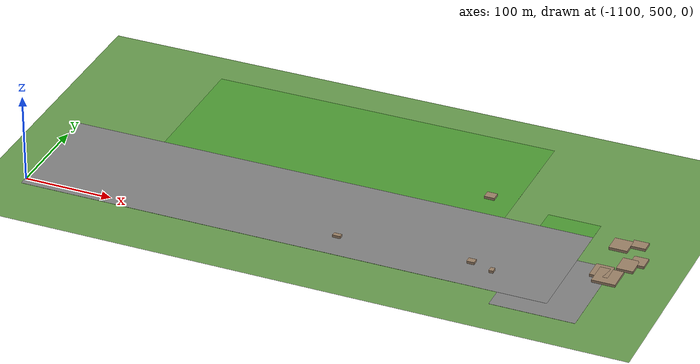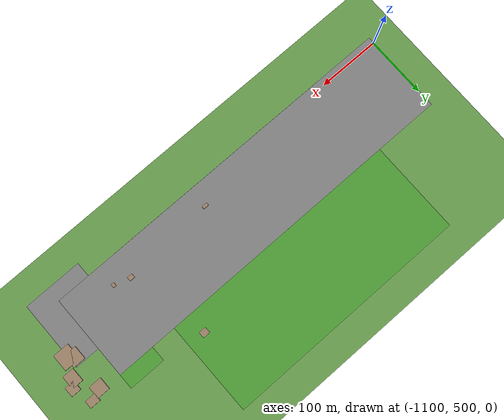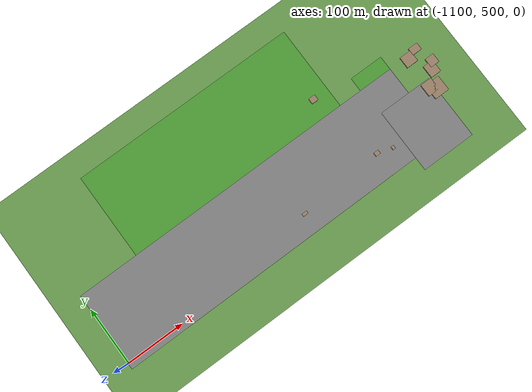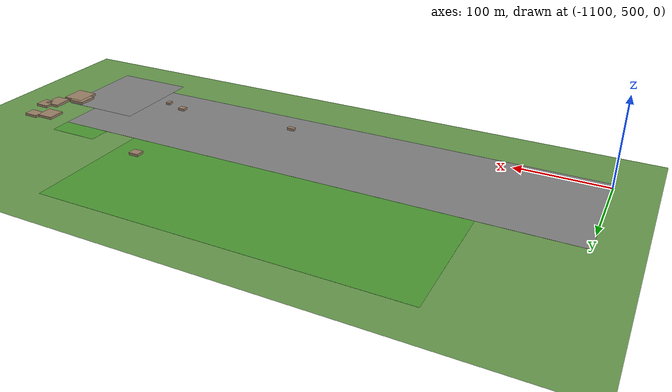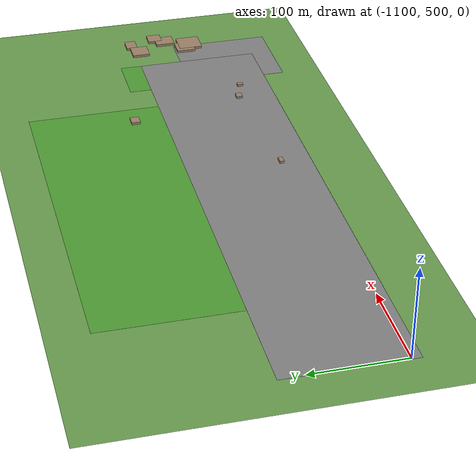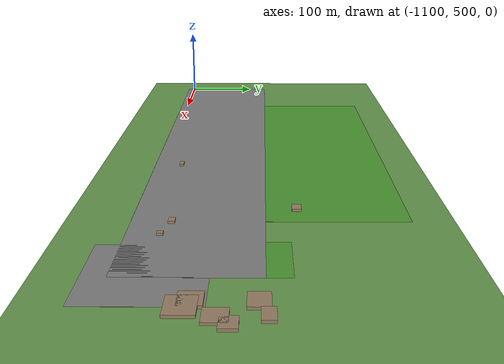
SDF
<sdf version="1.9">
 <world name="kimje_farmland">
  <model name="ground_plane">
   <static>true</static>
   <link name="link">
    <collision name="collision">
     <geometry><plane><normal>0 0 1</normal><size>2000 2000</size></plane></geometry>
    </collision>
    <visual name="visual">
     <geometry><plane><normal>0 0 1</normal><size>2000 2000</size></plane></geometry>
     <material><ambient>0.4 0.6 0.3 1</ambient><diffuse>0.4 0.6 0.3 1</diffuse></material>
    </visual>
   </link>
  </model>
  <model name="osm_1">
   <static>true</static>
   <pose>-510.40 522.32 0.040 0 0 0</pose>
   <link name="link">
    <collision name="collision"><geometry><box><size>93.81 112.27 0.080</size></box></geometry></collision>
    <visual name="visual">
     <geometry><box><size>93.81 112.27 0.080</size></box></geometry>
     <material><ambient>0.5 0.5 0.5 1</ambient><diffuse>0.5 0.5 0.5 1</diffuse></material>
    </visual>
   </link>
  </model>
  <model name="osm_78">
   <static>true</static>
   <pose>-801.93 558.22 0.040 0 0 0</pose>
   <link name="link">
    <collision name="collision"><geometry><box><size>597.90 136.83 0.080</size></box></geometry></collision>
    <visual name="visual">
     <geometry><box><size>597.90 136.83 0.080</size></box></geometry>
     <material><ambient>0.5 0.5 0.5 1</ambient><diffuse>0.5 0.5 0.5 1</diffuse></material>
    </visual>
   </link>
  </model>
  <model name="osm_210">
   <static>true</static>
   <pose>-452.32 628.74 1.500 0 0 0</pose>
   <link name="link">
    <collision name="collision"><geometry><box><size>16.87 12.67 3.000</size></box></geometry></collision>
    <visual name="visual">
     <geometry><box><size>16.87 12.67 3.000</size></box></geometry>
     <material><ambient>0.6 0.5 0.4 1</ambient><diffuse>0.6 0.5 0.4 1</diffuse></material>
    </visual>
   </link>
  </model>
  <model name="osm_211">
   <static>true</static>
   <pose>-470.15 621.14 1.500 0 0 0</pose>
   <link name="link">
    <collision name="collision"><geometry><box><size>20.48 20.04 3.000</size></box></geometry></collision>
    <visual name="visual">
     <geometry><box><size>20.48 20.04 3.000</size></box></geometry>
     <material><ambient>0.6 0.5 0.4 1</ambient><diffuse>0.6 0.5 0.4 1</diffuse></material>
    </visual>
   </link>
  </model>
  <model name="osm_212">
   <static>true</static>
   <pose>-441.89 597.80 1.500 0 0 0</pose>
   <link name="link">
    <collision name="collision"><geometry><box><size>15.81 16.09 3.000</size></box></geometry></collision>
    <visual name="visual">
     <geometry><box><size>15.81 16.09 3.000</size></box></geometry>
     <material><ambient>0.6 0.5 0.4 1</ambient><diffuse>0.6 0.5 0.4 1</diffuse></material>
    </visual>
   </link>
  </model>
  <model name="osm_213">
   <static>true</static>
   <pose>-450.36 587.13 1.500 0 0 0</pose>
   <link name="link">
    <collision name="collision"><geometry><box><size>18.42 21.83 3.000</size></box></geometry></collision>
    <visual name="visual">
     <geometry><box><size>18.42 21.83 3.000</size></box></geometry>
     <material><ambient>0.6 0.5 0.4 1</ambient><diffuse>0.6 0.5 0.4 1</diffuse></material>
    </visual>
   </link>
  </model>
  <model name="osm_216">
   <static>true</static>
   <pose>-630.28 659.35 1.500 0 0 0</pose>
   <link name="link">
    <collision name="collision"><geometry><box><size>11.58 9.96 3.000</size></box></geometry></collision>
    <visual name="visual">
     <geometry><box><size>11.58 9.96 3.000</size></box></geometry>
     <material><ambient>0.6 0.5 0.4 1</ambient><diffuse>0.6 0.5 0.4 1</diffuse></material>
    </visual>
   </link>
  </model>
  <model name="osm_217">
   <static>true</static>
   <pose>-748.86 522.82 1.500 0 0 0</pose>
   <link name="link">
    <collision name="collision"><geometry><box><size>8.88 4.89 3.000</size></box></geometry></collision>
    <visual name="visual">
     <geometry><box><size>8.88 4.89 3.000</size></box></geometry>
     <material><ambient>0.6 0.5 0.4 1</ambient><diffuse>0.6 0.5 0.4 1</diffuse></material>
    </visual>
   </link>
  </model>
  <model name="osm_218">
   <static>true</static>
   <pose>-601.89 531.72 1.500 0 0 0</pose>
   <link name="link">
    <collision name="collision"><geometry><box><size>8.46 6.80 3.000</size></box></geometry></collision>
    <visual name="visual">
     <geometry><box><size>8.46 6.80 3.000</size></box></geometry>
     <material><ambient>0.6 0.5 0.4 1</ambient><diffuse>0.6 0.5 0.4 1</diffuse></material>
    </visual>
   </link>
  </model>
  <model name="osm_219">
   <static>true</static>
   <pose>-576.23 523.91 1.500 0 0 0</pose>
   <link name="link">
    <collision name="collision"><geometry><box><size>4.86 6.52 3.000</size></box></geometry></collision>
    <visual name="visual">
     <geometry><box><size>4.86 6.52 3.000</size></box></geometry>
     <material><ambient>0.6 0.5 0.4 1</ambient><diffuse>0.6 0.5 0.4 1</diffuse></material>
    </visual>
   </link>
  </model>
  <model name="osm_225">
   <static>true</static>
   <pose>-462.40 558.79 1.500 0 0 0</pose>
   <link name="link">
    <collision name="collision"><geometry><box><size>25.88 27.15 3.000</size></box></geometry></collision>
    <visual name="visual">
     <geometry><box><size>25.88 27.15 3.000</size></box></geometry>
     <material><ambient>0.6 0.5 0.4 1</ambient><diffuse>0.6 0.5 0.4 1</diffuse></material>
    </visual>
   </link>
  </model>
  <model name="osm_226">
   <static>true</static>
   <pose>-471.04 565.66 1.500 0 0 0</pose>
   <link name="link">
    <collision name="collision"><geometry><box><size>19.99 21.91 3.000</size></box></geometry></collision>
    <visual name="visual">
     <geometry><box><size>19.99 21.91 3.000</size></box></geometry>
     <material><ambient>0.6 0.5 0.4 1</ambient><diffuse>0.6 0.5 0.4 1</diffuse></material>
    </visual>
   </link>
  </model>
  <model name="osm_282">
   <static>true</static>
   <pose>-799.19 632.60 0.025 0 0 0</pose>
   <link name="link">
    <collision name="collision"><geometry><box><size>394.64 285.87 0.050</size></box></geometry></collision>
    <visual name="visual">
     <geometry><box><size>394.64 285.87 0.050</size></box></geometry>
     <material><ambient>0.3 0.6 0.2 1</ambient><diffuse>0.3 0.6 0.2 1</diffuse></material>
    </visual>
   </link>
  </model>
  <model name="osm_285">
   <static>true</static>
   <pose>-532.53 615.78 0.025 0 0 0</pose>
   <link name="link">
    <collision name="collision"><geometry><box><size>59.09 70.47 0.050</size></box></geometry></collision>
    <visual name="visual">
     <geometry><box><size>59.09 70.47 0.050</size></box></geometry>
     <material><ambient>0.3 0.6 0.2 1</ambient><diffuse>0.3 0.6 0.2 1</diffuse></material>
    </visual>
   </link>
  </model>
 </world>
</sdf>
